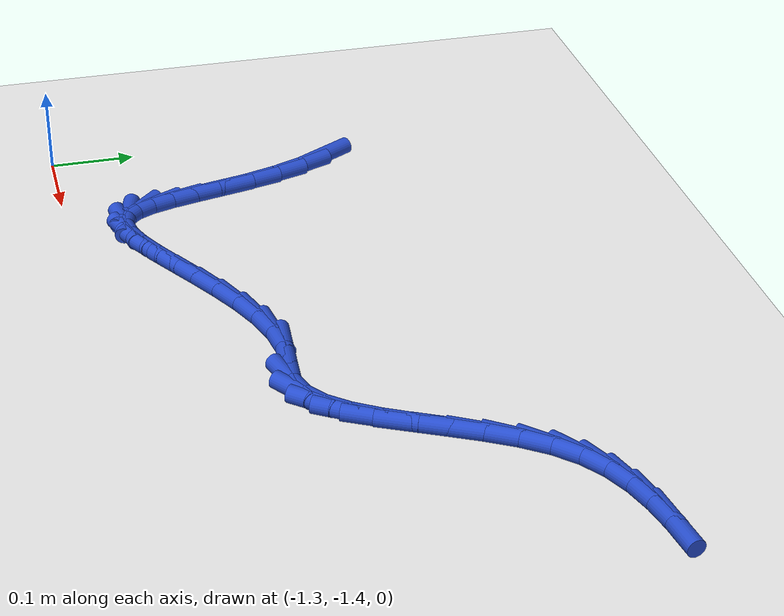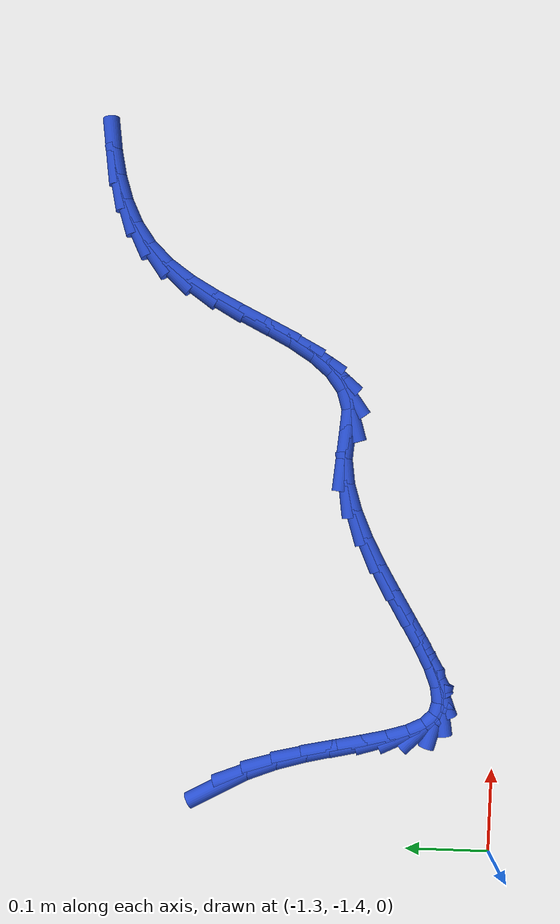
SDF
<sdf version="1.6">
 <world name="default">
  <model name="ground_plane">
   <static>1</static>
   <link name="link">
    <collision name="collision">
     <geometry><plane><normal>0 0 1</normal><size>100 100</size></plane></geometry>
     <surface><friction><ode><mu>100</mu><mu2>50</mu2></ode></friction></surface>
    </collision>
    <visual name="visual">
     <cast_shadows>0</cast_shadows>
     <geometry><plane><normal>0 0 1</normal><size>100 100</size></plane></geometry>
     <material>
      <script><uri>file://media/materials/scripts/gazebo.material</uri><name>Gazebo/WhiteGlow</name></script>
     </material>
    </visual>
   </link>
  </model>
  <model name="line">
   <link name="link_216">
    <pose>-1.2313135609456485 -1.0707538288647336 0.01 0 1.57 -1.06356610709026</pose>
    <collision name="collision">
     <geometry><cylinder><radius>0.01</radius><length>0.08</length></cylinder></geometry>
    </collision>
    <visual name="visual">
     <material>
      <script><name>Gazebo/Blue</name><uri>file://media/materials/scripts/gazebo.material</uri></script>
     </material>
     <geometry><cylinder><radius>0.01</radius><length>0.08</length></cylinder></geometry>
    </visual>
   </link>
   <link name="link_217">
    <pose>-1.2132936297026318 -1.1031796438438104 0.01 0 1.57 -1.190597116809973</pose>
    <collision name="collision">
     <geometry><cylinder><radius>0.01</radius><length>0.08</length></cylinder></geometry>
    </collision>
    <visual name="visual">
     <material>
      <script><name>Gazebo/Blue</name><uri>file://media/materials/scripts/gazebo.material</uri></script>
     </material>
     <geometry><cylinder><radius>0.01</radius><length>0.08</length></cylinder></geometry>
    </visual>
   </link>
   <link name="link_218">
    <pose>-1.1994901670444769 -1.1377190638962411 0.01 0 1.57 -1.2795500069984649</pose>
    <collision name="collision">
     <geometry><cylinder><radius>0.01</radius><length>0.08</length></cylinder></geometry>
    </collision>
    <visual name="visual">
     <material>
      <script><name>Gazebo/Blue</name><uri>file://media/materials/scripts/gazebo.material</uri></script>
     </material>
     <geometry><cylinder><radius>0.01</radius><length>0.08</length></cylinder></geometry>
    </visual>
   </link>
   <link name="link_219">
    <pose>-1.1888960502430652 -1.1730598108028607 0.01 0 1.57 -1.334362317686847</pose>
    <collision name="collision">
     <geometry><cylinder><radius>0.01</radius><length>0.08</length></cylinder></geometry>
    </collision>
    <visual name="visual">
     <material>
      <script><name>Gazebo/Blue</name><uri>file://media/materials/scripts/gazebo.material</uri></script>
     </material>
     <geometry><cylinder><radius>0.01</radius><length>0.08</length></cylinder></geometry>
    </visual>
   </link>
   <link name="link_220">
    <pose>-1.180504145572998 -1.2078896001197825 0.01 0 1.57 -1.3561140283238706</pose>
    <collision name="collision">
     <geometry><cylinder><radius>0.01</radius><length>0.08</length></cylinder></geometry>
    </collision>
    <visual name="visual">
     <material>
      <script><name>Gazebo/Blue</name><uri>file://media/materials/scripts/gazebo.material</uri></script>
     </material>
     <geometry><cylinder><radius>0.01</radius><length>0.08</length></cylinder></geometry>
    </visual>
   </link>
   <link name="link_221">
    <pose>-1.173307319308876 -1.2408961474031182 0.01 0 1.57 -1.340327290066008</pose>
    <collision name="collision">
     <geometry><cylinder><radius>0.01</radius><length>0.08</length></cylinder></geometry>
    </collision>
    <visual name="visual">
     <material>
      <script><name>Gazebo/Blue</name><uri>file://media/materials/scripts/gazebo.material</uri></script>
     </material>
     <geometry><cylinder><radius>0.01</radius><length>0.08</length></cylinder></geometry>
    </visual>
   </link>
   <link name="link_222">
    <pose>-1.1662984377253005 -1.2707671682089805 0.01 0 1.57 -1.27209818061662</pose>
    <collision name="collision">
     <geometry><cylinder><radius>0.01</radius><length>0.08</length></cylinder></geometry>
    </collision>
    <visual name="visual">
     <material>
      <script><name>Gazebo/Blue</name><uri>file://media/materials/scripts/gazebo.material</uri></script>
     </material>
     <geometry><cylinder><radius>0.01</radius><length>0.08</length></cylinder></geometry>
    </visual>
   </link>
   <link name="link_223">
    <pose>-1.1584703670968715 -1.2961903780934818 0.01 0 1.57 -1.114382630383202</pose>
    <collision name="collision">
     <geometry><cylinder><radius>0.01</radius><length>0.08</length></cylinder></geometry>
    </collision>
    <visual name="visual">
     <material>
      <script><name>Gazebo/Blue</name><uri>file://media/materials/scripts/gazebo.material</uri></script>
     </material>
     <geometry><cylinder><radius>0.01</radius><length>0.08</length></cylinder></geometry>
    </visual>
   </link>
   <link name="link_224">
    <pose>-1.1488159736981898 -1.315853492612734 0.01 0 1.57 -0.7895006372894806</pose>
    <collision name="collision">
     <geometry><cylinder><radius>0.01</radius><length>0.08</length></cylinder></geometry>
    </collision>
    <visual name="visual">
     <material>
      <script><name>Gazebo/Blue</name><uri>file://media/materials/scripts/gazebo.material</uri></script>
     </material>
     <geometry><cylinder><radius>0.01</radius><length>0.08</length></cylinder></geometry>
    </visual>
   </link>
   <link name="link_225">
    <pose>-1.1363281238038567 -1.3284442273228505 0.01 0 1.57 -0.2658761989670365</pose>
    <collision name="collision">
     <geometry><cylinder><radius>0.01</radius><length>0.08</length></cylinder></geometry>
    </collision>
    <visual name="visual">
     <material>
      <script><name>Gazebo/Blue</name><uri>file://media/materials/scripts/gazebo.material</uri></script>
     </material>
     <geometry><cylinder><radius>0.01</radius><length>0.08</length></cylinder></geometry>
    </visual>
   </link>
   <link name="link_226">
    <pose>-1.1201114889602148 -1.3328603982132634 0.01 0 1.57 0.1559972658831544</pose>
    <collision name="collision">
     <geometry><cylinder><radius>0.01</radius><length>0.08</length></cylinder></geometry>
    </collision>
    <visual name="visual">
     <material>
      <script><name>Gazebo/Blue</name><uri>file://media/materials/scripts/gazebo.material</uri></script>
     </material>
     <geometry><cylinder><radius>0.01</radius><length>0.08</length></cylinder></geometry>
    </visual>
   </link>
   <link name="link_227">
    <pose>-1.1001899905075783 -1.3297272423246045 0.01 0 1.57 0.37858926728118325</pose>
    <collision name="collision">
     <geometry><cylinder><radius>0.01</radius><length>0.08</length></cylinder></geometry>
    </collision>
    <visual name="visual">
     <material>
      <script><name>Gazebo/Blue</name><uri>file://media/materials/scripts/gazebo.material</uri></script>
     </material>
     <geometry><cylinder><radius>0.01</radius><length>0.08</length></cylinder></geometry>
    </visual>
   </link>
   <link name="link_228">
    <pose>-1.0770389631097501 -1.320518276330422 0.01 0 1.57 0.4896848646550444</pose>
    <collision name="collision">
     <geometry><cylinder><radius>0.01</radius><length>0.08</length></cylinder></geometry>
    </collision>
    <visual name="visual">
     <material>
      <script><name>Gazebo/Blue</name><uri>file://media/materials/scripts/gazebo.material</uri></script>
     </material>
     <geometry><cylinder><radius>0.01</radius><length>0.08</length></cylinder></geometry>
    </visual>
   </link>
   <link name="link_229">
    <pose>-1.051136865616282 -1.306712887761417 0.01 0 1.57 0.5408786500659345</pose>
    <collision name="collision">
     <geometry><cylinder><radius>0.01</radius><length>0.08</length></cylinder></geometry>
    </collision>
    <visual name="visual">
     <material>
      <script><name>Gazebo/Blue</name><uri>file://media/materials/scripts/gazebo.material</uri></script>
     </material>
     <geometry><cylinder><radius>0.01</radius><length>0.08</length></cylinder></geometry>
    </visual>
   </link>
   <link name="link_230">
    <pose>-1.0229621568767246 -1.2897904641482907 0.01 0 1.57 0.5544985066854827</pose>
    <collision name="collision">
     <geometry><cylinder><radius>0.01</radius><length>0.08</length></cylinder></geometry>
    </collision>
    <visual name="visual">
     <material>
      <script><name>Gazebo/Blue</name><uri>file://media/materials/scripts/gazebo.material</uri></script>
     </material>
     <geometry><cylinder><radius>0.01</radius><length>0.08</length></cylinder></geometry>
    </visual>
   </link>
   <link name="link_231">
    <pose>-0.9929932957406291 -1.271230393021744 0.01 0 1.57 0.5391869707626493</pose>
    <collision name="collision">
     <geometry><cylinder><radius>0.01</radius><length>0.08</length></cylinder></geometry>
    </collision>
    <visual name="visual">
     <material>
      <script><name>Gazebo/Blue</name><uri>file://media/materials/scripts/gazebo.material</uri></script>
     </material>
     <geometry><cylinder><radius>0.01</radius><length>0.08</length></cylinder></geometry>
    </visual>
   </link>
   <link name="link_232">
    <pose>-0.9617087410575464 -1.2525120619124777 0.01 0 1.57 0.49637222973292205</pose>
    <collision name="collision">
     <geometry><cylinder><radius>0.01</radius><length>0.08</length></cylinder></geometry>
    </collision>
    <visual name="visual">
     <material>
      <script><name>Gazebo/Blue</name><uri>file://media/materials/scripts/gazebo.material</uri></script>
     </material>
     <geometry><cylinder><radius>0.01</radius><length>0.08</length></cylinder></geometry>
    </visual>
   </link>
   <link name="link_233">
    <pose>-0.9295869516770284 -1.235114858351193 0.01 0 1.57 0.42235286769508934</pose>
    <collision name="collision">
     <geometry><cylinder><radius>0.01</radius><length>0.08</length></cylinder></geometry>
    </collision>
    <visual name="visual">
     <material>
      <script><name>Gazebo/Blue</name><uri>file://media/materials/scripts/gazebo.material</uri></script>
     </material>
     <geometry><cylinder><radius>0.01</radius><length>0.08</length></cylinder></geometry>
    </visual>
   </link>
   <link name="link_234">
    <pose>-0.8971063864486244 -1.2205181698685905 0.01 0 1.57 0.30861786381625167</pose>
    <collision name="collision">
     <geometry><cylinder><radius>0.01</radius><length>0.08</length></cylinder></geometry>
    </collision>
    <visual name="visual">
     <material>
      <script><name>Gazebo/Blue</name><uri>file://media/materials/scripts/gazebo.material</uri></script>
     </material>
     <geometry><cylinder><radius>0.01</radius><length>0.08</length></cylinder></geometry>
    </visual>
   </link>
   <link name="link_235">
    <pose>-0.8647455042218861 -1.210201383995371 0.01 0 1.57 0.14251288441608945</pose>
    <collision name="collision">
     <geometry><cylinder><radius>0.01</radius><length>0.08</length></cylinder></geometry>
    </collision>
    <visual name="visual">
     <material>
      <script><name>Gazebo/Blue</name><uri>file://media/materials/scripts/gazebo.material</uri></script>
     </material>
     <geometry><cylinder><radius>0.01</radius><length>0.08</length></cylinder></geometry>
    </visual>
   </link>
   <link name="link_236">
    <pose>-0.8329827638463647 -1.2056438882622356 0.01 0 1.57 -0.0835030974765715</pose>
    <collision name="collision">
     <geometry><cylinder><radius>0.01</radius><length>0.08</length></cylinder></geometry>
    </collision>
    <visual name="visual">
     <material>
      <script><name>Gazebo/Blue</name><uri>file://media/materials/scripts/gazebo.material</uri></script>
     </material>
     <geometry><cylinder><radius>0.01</radius><length>0.08</length></cylinder></geometry>
    </visual>
   </link>
   <link name="link_237">
    <pose>-0.8023120553942941 -1.2082109567188264 0.01 0 1.57 -0.07428058655604469</pose>
    <collision name="collision">
     <geometry><cylinder><radius>0.01</radius><length>0.08</length></cylinder></geometry>
    </collision>
    <visual name="visual">
     <material>
      <script><name>Gazebo/Blue</name><uri>file://media/materials/scripts/gazebo.material</uri></script>
     </material>
     <geometry><cylinder><radius>0.01</radius><length>0.08</length></cylinder></geometry>
    </visual>
   </link>
   <link name="link_238">
    <pose>-0.7743926217925913 -1.2102886513292044 0.01 0 1.57 0.29808453999979656</pose>
    <collision name="collision">
     <geometry><cylinder><radius>0.01</radius><length>0.08</length></cylinder></geometry>
    </collision>
    <visual name="visual">
     <material>
      <script><name>Gazebo/Blue</name><uri>file://media/materials/scripts/gazebo.material</uri></script>
     </material>
     <geometry><cylinder><radius>0.01</radius><length>0.08</length></cylinder></geometry>
    </visual>
   </link>
   <link name="link_239">
    <pose>-0.7503983266692865 -1.202916674290603 0.01 0 1.57 0.6410831325040944</pose>
    <collision name="collision">
     <geometry><cylinder><radius>0.01</radius><length>0.08</length></cylinder></geometry>
    </collision>
    <visual name="visual">
     <material>
      <script><name>Gazebo/Blue</name><uri>file://media/materials/scripts/gazebo.material</uri></script>
     </material>
     <geometry><cylinder><radius>0.01</radius><length>0.08</length></cylinder></geometry>
    </visual>
   </link>
   <link name="link_240">
    <pose>-0.7296294629917491 -1.1874183512382674 0.01 0 1.57 0.8778893633545318</pose>
    <collision name="collision">
     <geometry><cylinder><radius>0.01</radius><length>0.08</length></cylinder></geometry>
    </collision>
    <visual name="visual">
     <material>
      <script><name>Gazebo/Blue</name><uri>file://media/materials/scripts/gazebo.material</uri></script>
     </material>
     <geometry><cylinder><radius>0.01</radius><length>0.08</length></cylinder></geometry>
    </visual>
   </link>
   <link name="link_241">
    <pose>-0.711338938988309 -1.1653878129055917 0.01 0 1.57 1.0201316711867363</pose>
    <collision name="collision">
     <geometry><cylinder><radius>0.01</radius><length>0.08</length></cylinder></geometry>
    </collision>
    <visual name="visual">
     <material>
      <script><name>Gazebo/Blue</name><uri>file://media/materials/scripts/gazebo.material</uri></script>
     </material>
     <geometry><cylinder><radius>0.01</radius><length>0.08</length></cylinder></geometry>
    </visual>
   </link>
   <link name="link_242">
    <pose>-0.6947796628872955 -1.13841919002597 0.01 0 1.57 1.096156244005796</pose>
    <collision name="collision">
     <geometry><cylinder><radius>0.01</radius><length>0.08</length></cylinder></geometry>
    </collision>
    <visual name="visual">
     <material>
      <script><name>Gazebo/Blue</name><uri>file://media/materials/scripts/gazebo.material</uri></script>
     </material>
     <geometry><cylinder><radius>0.01</radius><length>0.08</length></cylinder></geometry>
    </visual>
   </link>
   <link name="link_243">
    <pose>-0.6792045429170384 -1.108106613332795 0.01 0 1.57 1.1245926912470399</pose>
    <collision name="collision">
     <geometry><cylinder><radius>0.01</radius><length>0.08</length></cylinder></geometry>
    </collision>
    <visual name="visual">
     <material>
      <script><name>Gazebo/Blue</name><uri>file://media/materials/scripts/gazebo.material</uri></script>
     </material>
     <geometry><cylinder><radius>0.01</radius><length>0.08</length></cylinder></geometry>
    </visual>
   </link>
   <link name="link_244">
    <pose>-0.663866487305867 -1.076044213559462 0.01 0 1.57 1.1136496019385684</pose>
    <collision name="collision">
     <geometry><cylinder><radius>0.01</radius><length>0.08</length></cylinder></geometry>
    </collision>
    <visual name="visual">
     <material>
      <script><name>Gazebo/Blue</name><uri>file://media/materials/scripts/gazebo.material</uri></script>
     </material>
     <geometry><cylinder><radius>0.01</radius><length>0.08</length></cylinder></geometry>
    </visual>
   </link>
   <link name="link_245">
    <pose>-0.6480184042821113 -1.043826121439364 0.01 0 1.57 1.0635639038920053</pose>
    <collision name="collision">
     <geometry><cylinder><radius>0.01</radius><length>0.08</length></cylinder></geometry>
    </collision>
    <visual name="visual">
     <material>
      <script><name>Gazebo/Blue</name><uri>file://media/materials/scripts/gazebo.material</uri></script>
     </material>
     <geometry><cylinder><radius>0.01</radius><length>0.08</length></cylinder></geometry>
    </visual>
   </link>
   <link name="link_246">
    <pose>-0.630913202074101 -1.013046467705896 0.01 0 1.57 0.9676946809736288</pose>
    <collision name="collision">
     <geometry><cylinder><radius>0.01</radius><length>0.08</length></cylinder></geometry>
    </collision>
    <visual name="visual">
     <material>
      <script><name>Gazebo/Blue</name><uri>file://media/materials/scripts/gazebo.material</uri></script>
     </material>
     <geometry><cylinder><radius>0.01</radius><length>0.08</length></cylinder></geometry>
    </visual>
   </link>
   <link name="link_247">
    <pose>-0.6118037889101651 -0.9852993830924506 0.01 0 1.57 0.8138862740427939</pose>
    <collision name="collision">
     <geometry><cylinder><radius>0.01</radius><length>0.08</length></cylinder></geometry>
    </collision>
    <visual name="visual">
     <material>
      <script><name>Gazebo/Blue</name><uri>file://media/materials/scripts/gazebo.material</uri></script>
     </material>
     <geometry><cylinder><radius>0.01</radius><length>0.08</length></cylinder></geometry>
    </visual>
   </link>
   <link name="link_248">
    <pose>-0.5899508398436459 -0.9621644679511338 0.01 0 1.57 0.6222543450234582</pose>
    <collision name="collision">
     <geometry><cylinder><radius>0.01</radius><length>0.08</length></cylinder></geometry>
    </collision>
    <visual name="visual">
     <material>
      <script><name>Gazebo/Blue</name><uri>file://media/materials/scripts/gazebo.material</uri></script>
     </material>
     <geometry><cylinder><radius>0.01</radius><length>0.08</length></cylinder></geometry>
    </visual>
   </link>
   <link name="link_249">
    <pose>-0.5650905375443124 -0.9443317304309147 0.01 0 1.57 0.44998157696938407</pose>
    <collision name="collision">
     <geometry><cylinder><radius>0.01</radius><length>0.08</length></cylinder></geometry>
    </collision>
    <visual name="visual">
     <material>
      <script><name>Gazebo/Blue</name><uri>file://media/materials/scripts/gazebo.material</uri></script>
     </material>
     <geometry><cylinder><radius>0.01</radius><length>0.08</length></cylinder></geometry>
    </visual>
   </link>
   <link name="link_250">
    <pose>-0.5377016154095503 -0.9311019951747801 0.01 0 1.57 0.31114908174823164</pose>
    <collision name="collision">
     <geometry><cylinder><radius>0.01</radius><length>0.08</length></cylinder></geometry>
    </collision>
    <visual name="visual">
     <material>
      <script><name>Gazebo/Blue</name><uri>file://media/materials/scripts/gazebo.material</uri></script>
     </material>
     <geometry><cylinder><radius>0.01</radius><length>0.08</length></cylinder></geometry>
    </visual>
   </link>
   <link name="link_251">
    <pose>-0.5083273309943752 -0.9216553733280555 0.01 0 1.57 0.20736374024863258</pose>
    <collision name="collision">
     <geometry><cylinder><radius>0.01</radius><length>0.08</length></cylinder></geometry>
    </collision>
    <visual name="visual">
     <material>
      <script><name>Gazebo/Blue</name><uri>file://media/materials/scripts/gazebo.material</uri></script>
     </material>
     <geometry><cylinder><radius>0.01</radius><length>0.08</length></cylinder></geometry>
    </visual>
   </link>
   <link name="link_252">
    <pose>-0.47751094185380377 -0.9151719760360693 0.01 0 1.57 0.13599995249711594</pose>
    <collision name="collision">
     <geometry><cylinder><radius>0.01</radius><length>0.08</length></cylinder></geometry>
    </collision>
    <visual name="visual">
     <material>
      <script><name>Gazebo/Blue</name><uri>file://media/materials/scripts/gazebo.material</uri></script>
     </material>
     <geometry><cylinder><radius>0.01</radius><length>0.08</length></cylinder></geometry>
    </visual>
   </link>
  </model>
 </world>
</sdf>
